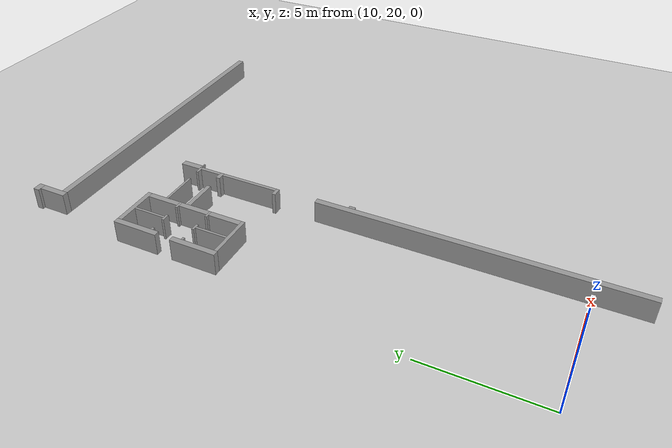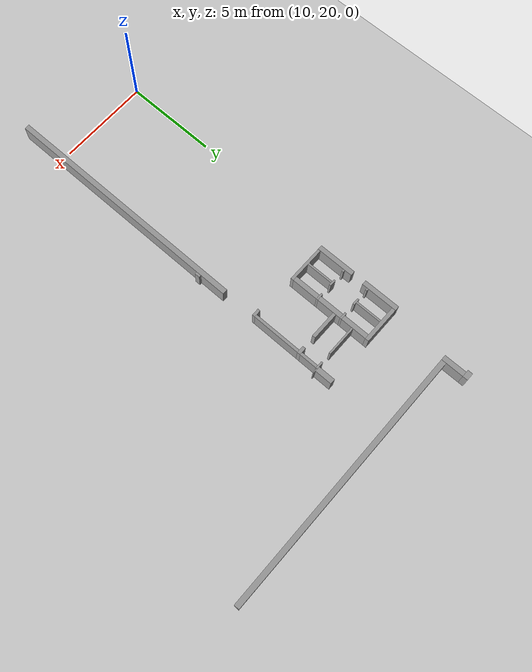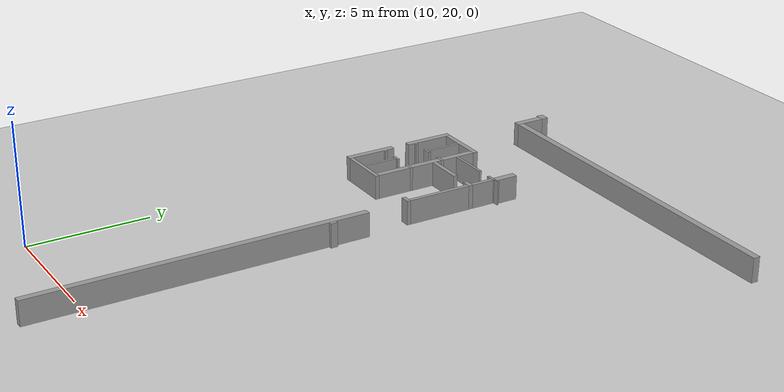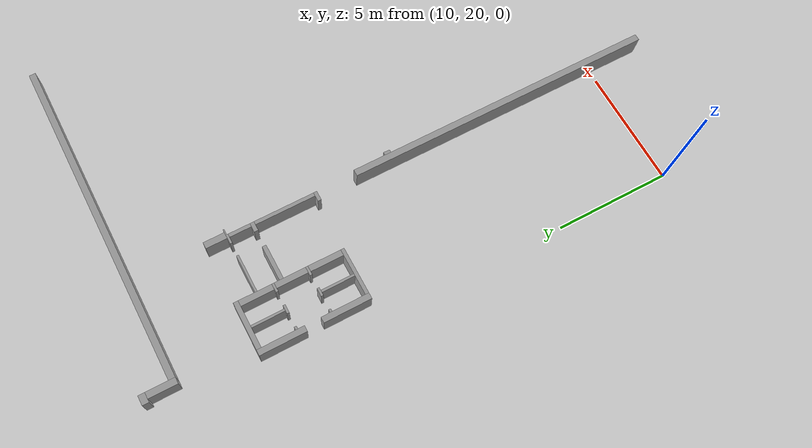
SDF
<sdf version="1.4">
 <world name="default">
  <model name="ground_plane">
   <static>1</static>
   <link name="link">
    <collision name="collision">
     <geometry><plane><normal>0 0 1</normal><size>100 100</size></plane></geometry>
     <surface><friction><ode><mu>100</mu><mu2>50</mu2></ode></friction></surface>
    </collision>
    <visual name="visual">
     <cast_shadows>0</cast_shadows>
     <geometry><plane><normal>0 0 1</normal><size>100 100</size></plane></geometry>
     <material>
      <script><uri>file://media/materials/scripts/gazebo.material</uri><name>Gazebo/Grey</name></script>
     </material>
    </visual>
    <velocity_decay><linear>0</linear><angular>0</angular></velocity_decay>
   </link>
  </model>
  <model name="walls">
   <static>1</static>
   <link name="Wall_87">
    <collision name="Wall_87_Collision">
     <geometry><box><size>2.06809 0.25532 1</size></box></geometry>
     <pose>57.0766 -17.8468 0.5 0 -0 0</pose>
    </collision>
    <visual name="Wall_87_Visual">
     <geometry><box><size>2.06809 0.25532 1</size></box></geometry>
     <material>
      <script><uri>file://media/materials/scripts/gazebo.material</uri><name>Gazebo/Grey</name></script>
     </material>
     <pose>57.0766 -17.8468 0.5 0 -0 0</pose>
    </visual>
    <velocity_decay><linear>0</linear><angular>0</angular></velocity_decay>
   </link>
   <link name="Wall_88">
    <collision name="Wall_88_Collision">
     <geometry><box><size>2.01702 0.25532 1</size></box></geometry>
     <pose>59.8085 -17.8468 0.5 0 -0 0</pose>
    </collision>
    <visual name="Wall_88_Visual">
     <geometry><box><size>2.01702 0.25532 1</size></box></geometry>
     <material>
      <script><uri>file://media/materials/scripts/gazebo.material</uri><name>Gazebo/Grey</name></script>
     </material>
     <pose>59.8085 -17.8468 0.5 0 -0 0</pose>
    </visual>
    <velocity_decay><linear>0</linear><angular>0</angular></velocity_decay>
   </link>
   <link name="Wall_89">
    <collision name="Wall_89_Collision">
     <geometry><box><size>0.15319 2.04255 1</size></box></geometry>
     <pose>56.1191 -18.9957 0.5 0 -0 0</pose>
    </collision>
    <visual name="Wall_89_Visual">
     <geometry><box><size>0.15319 2.04255 1</size></box></geometry>
     <material>
      <script><uri>file://media/materials/scripts/gazebo.material</uri><name>Gazebo/Grey</name></script>
     </material>
     <pose>56.1191 -18.9957 0.5 0 -0 0</pose>
    </visual>
    <velocity_decay><linear>0</linear><angular>0</angular></velocity_decay>
   </link>
   <link name="Wall_90">
    <collision name="Wall_90_Collision">
     <geometry><box><size>0.10213 0.12766 1</size></box></geometry>
     <pose>57.6766 -18.0383 0.5 0 -0 0</pose>
    </collision>
    <visual name="Wall_90_Visual">
     <geometry><box><size>0.10213 0.12766 1</size></box></geometry>
     <material>
      <script><uri>file://media/materials/scripts/gazebo.material</uri><name>Gazebo/Grey</name></script>
     </material>
     <pose>57.6766 -18.0383 0.5 0 -0 0</pose>
    </visual>
    <velocity_decay><linear>0</linear><angular>0</angular></velocity_decay>
   </link>
   <link name="Wall_91">
    <collision name="Wall_91_Collision">
     <geometry><box><size>0.10213 0.12766 1</size></box></geometry>
     <pose>59.1319 -18.0383 0.5 0 -0 0</pose>
    </collision>
    <visual name="Wall_91_Visual">
     <geometry><box><size>0.10213 0.12766 1</size></box></geometry>
     <material>
      <script><uri>file://media/materials/scripts/gazebo.material</uri><name>Gazebo/Grey</name></script>
     </material>
     <pose>59.1319 -18.0383 0.5 0 -0 0</pose>
    </visual>
    <velocity_decay><linear>0</linear><angular>0</angular></velocity_decay>
   </link>
   <link name="Wall_92">
    <collision name="Wall_92_Collision">
     <geometry><box><size>0.20426 2.04255 1</size></box></geometry>
     <pose>60.7149 -18.9957 0.5 0 -0 0</pose>
    </collision>
    <visual name="Wall_92_Visual">
     <geometry><box><size>0.20426 2.04255 1</size></box></geometry>
     <material>
      <script><uri>file://media/materials/scripts/gazebo.material</uri><name>Gazebo/Grey</name></script>
     </material>
     <pose>60.7149 -18.9957 0.5 0 -0 0</pose>
    </visual>
    <velocity_decay><linear>0</linear><angular>0</angular></velocity_decay>
   </link>
   <link name="Wall_93">
    <collision name="Wall_93_Collision">
     <geometry><box><size>0.28085 0.40851 1</size></box></geometry>
     <pose>65.2723 -18.2553 0.5 0 -0 0</pose>
    </collision>
    <visual name="Wall_93_Visual">
     <geometry><box><size>0.28085 0.40851 1</size></box></geometry>
     <material>
      <script><uri>file://media/materials/scripts/gazebo.material</uri><name>Gazebo/Grey</name></script>
     </material>
     <pose>65.2723 -18.2553 0.5 0 -0 0</pose>
    </visual>
    <velocity_decay><linear>0</linear><angular>0</angular></velocity_decay>
   </link>
   <link name="Wall_94">
    <collision name="Wall_94_Collision">
     <geometry><box><size>1.22553 0.28085 1</size></box></geometry>
     <pose>64.5191 -18.3192 0.5 0 -0 0</pose>
    </collision>
    <visual name="Wall_94_Visual">
     <geometry><box><size>1.22553 0.28085 1</size></box></geometry>
     <material>
      <script><uri>file://media/materials/scripts/gazebo.material</uri><name>Gazebo/Grey</name></script>
     </material>
     <pose>64.5191 -18.3192 0.5 0 -0 0</pose>
    </visual>
    <velocity_decay><linear>0</linear><angular>0</angular></velocity_decay>
   </link>
   <link name="Wall_95">
    <collision name="Wall_95_Collision">
     <geometry><box><size>0.28085 14.4766 1</size></box></geometry>
     <pose>64.0468 -25.6979 0.5 0 -0 0</pose>
    </collision>
    <visual name="Wall_95_Visual">
     <geometry><box><size>0.28085 14.4766 1</size></box></geometry>
     <material>
      <script><uri>file://media/materials/scripts/gazebo.material</uri><name>Gazebo/Grey</name></script>
     </material>
     <pose>64.0468 -25.6979 0.5 0 -0 0</pose>
    </visual>
    <velocity_decay><linear>0</linear><angular>0</angular></velocity_decay>
   </link>
   <link name="Wall_96">
    <collision name="Wall_96_Collision">
     <geometry><box><size>0.10213 0.35745 1</size></box></geometry>
     <pose>57.6766 -18.8681 0.5 0 -0 0</pose>
    </collision>
    <visual name="Wall_96_Visual">
     <geometry><box><size>0.10213 0.35745 1</size></box></geometry>
     <material>
      <script><uri>file://media/materials/scripts/gazebo.material</uri><name>Gazebo/Grey</name></script>
     </material>
     <pose>57.6766 -18.8681 0.5 0 -0 0</pose>
    </visual>
    <velocity_decay><linear>0</linear><angular>0</angular></velocity_decay>
   </link>
   <link name="Wall_97">
    <collision name="Wall_97_Collision">
     <geometry><box><size>0.10213 0.35745 1</size></box></geometry>
     <pose>59.1319 -18.8681 0.5 0 -0 0</pose>
    </collision>
    <visual name="Wall_97_Visual">
     <geometry><box><size>0.10213 0.35745 1</size></box></geometry>
     <material>
      <script><uri>file://media/materials/scripts/gazebo.material</uri><name>Gazebo/Grey</name></script>
     </material>
     <pose>59.1319 -18.8681 0.5 0 -0 0</pose>
    </visual>
    <velocity_decay><linear>0</linear><angular>0</angular></velocity_decay>
   </link>
   <link name="Wall_98">
    <collision name="Wall_98_Collision">
     <geometry><box><size>1.42979 0.10213 1</size></box></geometry>
     <pose>56.9106 -18.8681 0.5 0 -0 0</pose>
    </collision>
    <visual name="Wall_98_Visual">
     <geometry><box><size>1.42979 0.10213 1</size></box></geometry>
     <material>
      <script><uri>file://media/materials/scripts/gazebo.material</uri><name>Gazebo/Grey</name></script>
     </material>
     <pose>56.9106 -18.8681 0.5 0 -0 0</pose>
    </visual>
    <velocity_decay><linear>0</linear><angular>0</angular></velocity_decay>
   </link>
   <link name="Wall_99">
    <collision name="Wall_99_Collision">
     <geometry><box><size>1.42979 0.10213 1</size></box></geometry>
     <pose>59.8979 -18.8681 0.5 0 -0 0</pose>
    </collision>
    <visual name="Wall_99_Visual">
     <geometry><box><size>1.42979 0.10213 1</size></box></geometry>
     <material>
      <script><uri>file://media/materials/scripts/gazebo.material</uri><name>Gazebo/Grey</name></script>
     </material>
     <pose>59.8979 -18.8681 0.5 0 -0 0</pose>
    </visual>
    <velocity_decay><linear>0</linear><angular>0</angular></velocity_decay>
   </link>
   <link name="Wall_100">
    <collision name="Wall_100_Collision">
     <geometry><box><size>0.10213 0.38298 1</size></box></geometry>
     <pose>57.6766 -19.8255 0.5 0 -0 0</pose>
    </collision>
    <visual name="Wall_100_Visual">
     <geometry><box><size>0.10213 0.38298 1</size></box></geometry>
     <material>
      <script><uri>file://media/materials/scripts/gazebo.material</uri><name>Gazebo/Grey</name></script>
     </material>
     <pose>57.6766 -19.8255 0.5 0 -0 0</pose>
    </visual>
    <velocity_decay><linear>0</linear><angular>0</angular></velocity_decay>
   </link>
   <link name="Wall_101">
    <collision name="Wall_101_Collision">
     <geometry><box><size>0.10213 0.38298 1</size></box></geometry>
     <pose>59.1319 -19.8255 0.5 0 -0 0</pose>
    </collision>
    <visual name="Wall_101_Visual">
     <geometry><box><size>0.10213 0.38298 1</size></box></geometry>
     <material>
      <script><uri>file://media/materials/scripts/gazebo.material</uri><name>Gazebo/Grey</name></script>
     </material>
     <pose>59.1319 -19.8255 0.5 0 -0 0</pose>
    </visual>
    <velocity_decay><linear>0</linear><angular>0</angular></velocity_decay>
   </link>
   <link name="Wall_102">
    <collision name="Wall_102_Collision">
     <geometry><box><size>1.42979 0.25532 1</size></box></geometry>
     <pose>56.9106 -19.8894 0.5 0 -0 0</pose>
    </collision>
    <visual name="Wall_102_Visual">
     <geometry><box><size>1.42979 0.25532 1</size></box></geometry>
     <material>
      <script><uri>file://media/materials/scripts/gazebo.material</uri><name>Gazebo/Grey</name></script>
     </material>
     <pose>56.9106 -19.8894 0.5 0 -0 0</pose>
    </visual>
    <velocity_decay><linear>0</linear><angular>0</angular></velocity_decay>
   </link>
   <link name="Wall_103">
    <collision name="Wall_103_Collision">
     <geometry><box><size>1.35319 0.25532 1</size></box></geometry>
     <pose>58.4043 -19.8894 0.5 0 -0 0</pose>
    </collision>
    <visual name="Wall_103_Visual">
     <geometry><box><size>1.35319 0.25532 1</size></box></geometry>
     <material>
      <script><uri>file://media/materials/scripts/gazebo.material</uri><name>Gazebo/Grey</name></script>
     </material>
     <pose>58.4043 -19.8894 0.5 0 -0 0</pose>
    </visual>
    <velocity_decay><linear>0</linear><angular>0</angular></velocity_decay>
   </link>
   <link name="Wall_104">
    <collision name="Wall_104_Collision">
     <geometry><box><size>1.42979 0.25532 1</size></box></geometry>
     <pose>59.8979 -19.8894 0.5 0 -0 0</pose>
    </collision>
    <visual name="Wall_104_Visual">
     <geometry><box><size>1.42979 0.25532 1</size></box></geometry>
     <material>
      <script><uri>file://media/materials/scripts/gazebo.material</uri><name>Gazebo/Grey</name></script>
     </material>
     <pose>59.8979 -19.8894 0.5 0 -0 0</pose>
    </visual>
    <velocity_decay><linear>0</linear><angular>0</angular></velocity_decay>
   </link>
   <link name="Wall_105">
    <collision name="Wall_105_Collision">
     <geometry><box><size>0.17872 1.53191 1</size></box></geometry>
     <pose>58.7617 -20.783 0.5 0 -0 0</pose>
    </collision>
    <visual name="Wall_105_Visual">
     <geometry><box><size>0.17872 1.53191 1</size></box></geometry>
     <material>
      <script><uri>file://media/materials/scripts/gazebo.material</uri><name>Gazebo/Grey</name></script>
     </material>
     <pose>58.7617 -20.783 0.5 0 -0 0</pose>
    </visual>
    <velocity_decay><linear>0</linear><angular>0</angular></velocity_decay>
   </link>
   <link name="Wall_106">
    <collision name="Wall_106_Collision">
     <geometry><box><size>0.10213 1.65957 1</size></box></geometry>
     <pose>59.8468 -20.8468 0.5 0 -0 0</pose>
    </collision>
    <visual name="Wall_106_Visual">
     <geometry><box><size>0.10213 1.65957 1</size></box></geometry>
     <material>
      <script><uri>file://media/materials/scripts/gazebo.material</uri><name>Gazebo/Grey</name></script>
     </material>
     <pose>59.8468 -20.8468 0.5 0 -0 0</pose>
    </visual>
    <velocity_decay><linear>0</linear><angular>0</angular></velocity_decay>
   </link>
   <link name="Wall_107">
    <collision name="Wall_107_Collision">
     <geometry><box><size>0.15319 0.40851 1</size></box></geometry>
     <pose>55.966 -22.4426 0.5 0 -0 0</pose>
    </collision>
    <visual name="Wall_107_Visual">
     <geometry><box><size>0.15319 0.40851 1</size></box></geometry>
     <material>
      <script><uri>file://media/materials/scripts/gazebo.material</uri><name>Gazebo/Grey</name></script>
     </material>
     <pose>55.966 -22.4426 0.5 0 -0 0</pose>
    </visual>
    <velocity_decay><linear>0</linear><angular>0</angular></velocity_decay>
   </link>
   <link name="Wall_108">
    <collision name="Wall_108_Collision">
     <geometry><box><size>0.17872 0.40851 1</size></box></geometry>
     <pose>58.7617 -22.4426 0.5 0 -0 0</pose>
    </collision>
    <visual name="Wall_108_Visual">
     <geometry><box><size>0.17872 0.40851 1</size></box></geometry>
     <material>
      <script><uri>file://media/materials/scripts/gazebo.material</uri><name>Gazebo/Grey</name></script>
     </material>
     <pose>58.7617 -22.4426 0.5 0 -0 0</pose>
    </visual>
    <velocity_decay><linear>0</linear><angular>0</angular></velocity_decay>
   </link>
   <link name="Wall_109">
    <collision name="Wall_109_Collision">
     <geometry><box><size>0.10213 0.40851 1</size></box></geometry>
     <pose>59.8468 -22.4426 0.5 0 -0 0</pose>
    </collision>
    <visual name="Wall_109_Visual">
     <geometry><box><size>0.10213 0.40851 1</size></box></geometry>
     <material>
      <script><uri>file://media/materials/scripts/gazebo.material</uri><name>Gazebo/Grey</name></script>
     </material>
     <pose>59.8468 -22.4426 0.5 0 -0 0</pose>
    </visual>
    <velocity_decay><linear>0</linear><angular>0</angular></velocity_decay>
   </link>
   <link name="Wall_110">
    <collision name="Wall_110_Collision">
     <geometry><box><size>13.634 0.28085 1</size></box></geometry>
     <pose>47.3362 -22.634 0.5 0 -0 0</pose>
    </collision>
    <visual name="Wall_110_Visual">
     <geometry><box><size>13.634 0.28085 1</size></box></geometry>
     <material>
      <script><uri>file://media/materials/scripts/gazebo.material</uri><name>Gazebo/Grey</name></script>
     </material>
     <pose>47.3362 -22.634 0.5 0 -0 0</pose>
    </visual>
    <velocity_decay><linear>0</linear><angular>0</angular></velocity_decay>
   </link>
   <link name="Wall_111">
    <collision name="Wall_111_Collision">
     <geometry><box><size>2.62979 0.15319 1</size></box></geometry>
     <pose>57.3575 -22.5702 0.5 0 -0 0</pose>
    </collision>
    <visual name="Wall_111_Visual">
     <geometry><box><size>2.62979 0.15319 1</size></box></geometry>
     <material>
      <script><uri>file://media/materials/scripts/gazebo.material</uri><name>Gazebo/Grey</name></script>
     </material>
     <pose>57.3575 -22.5702 0.5 0 -0 0</pose>
    </visual>
    <velocity_decay><linear>0</linear><angular>0</angular></velocity_decay>
   </link>
   <link name="Wall_112">
    <collision name="Wall_112_Collision">
     <geometry><box><size>0.94468 0.15319 1</size></box></geometry>
     <pose>59.3234 -22.5702 0.5 0 -0 0</pose>
    </collision>
    <visual name="Wall_112_Visual">
     <geometry><box><size>0.94468 0.15319 1</size></box></geometry>
     <material>
      <script><uri>file://media/materials/scripts/gazebo.material</uri><name>Gazebo/Grey</name></script>
     </material>
     <pose>59.3234 -22.5702 0.5 0 -0 0</pose>
    </visual>
    <velocity_decay><linear>0</linear><angular>0</angular></velocity_decay>
   </link>
   <link name="Wall_113">
    <collision name="Wall_113_Collision">
     <geometry><box><size>0.91915 0.28085 1</size></box></geometry>
     <pose>60.3575 -22.634 0.5 0 -0 0</pose>
    </collision>
    <visual name="Wall_113_Visual">
     <geometry><box><size>0.91915 0.28085 1</size></box></geometry>
     <material>
      <script><uri>file://media/materials/scripts/gazebo.material</uri><name>Gazebo/Grey</name></script>
     </material>
     <pose>60.3575 -22.634 0.5 0 -0 0</pose>
    </visual>
    <velocity_decay><linear>0</linear><angular>0</angular></velocity_decay>
   </link>
   <link name="Wall_114">
    <collision name="Wall_114_Collision">
     <geometry><box><size>0.05106 0.25532 1</size></box></geometry>
     <pose>59.8723 -22.7745 0.5 0 -0 0</pose>
    </collision>
    <visual name="Wall_114_Visual">
     <geometry><box><size>0.05106 0.25532 1</size></box></geometry>
     <material>
      <script><uri>file://media/materials/scripts/gazebo.material</uri><name>Gazebo/Grey</name></script>
     </material>
     <pose>59.8723 -22.7745 0.5 0 -0 0</pose>
    </visual>
    <velocity_decay><linear>0</linear><angular>0</angular></velocity_decay>
   </link>
   <link name="Wall_115">
    <collision name="Wall_115_Collision">
     <geometry><box><size>0.28085 0.12766 1</size></box></geometry>
     <pose>52.583 -22.8383 0.5 0 -0 0</pose>
    </collision>
    <visual name="Wall_115_Visual">
     <geometry><box><size>0.28085 0.12766 1</size></box></geometry>
     <material>
      <script><uri>file://media/materials/scripts/gazebo.material</uri><name>Gazebo/Grey</name></script>
     </material>
     <pose>52.583 -22.8383 0.5 0 -0 0</pose>
    </visual>
    <velocity_decay><linear>0</linear><angular>0</angular></velocity_decay>
   </link>
   <pose>-7 -22.75 0 0 -0 1.5708</pose>
  </model>
 </world>
</sdf>
